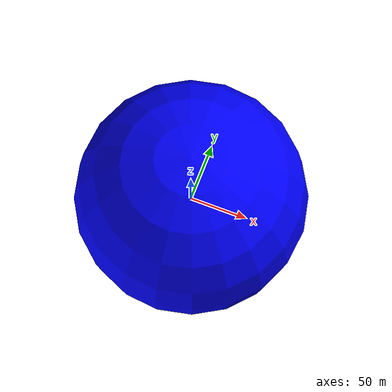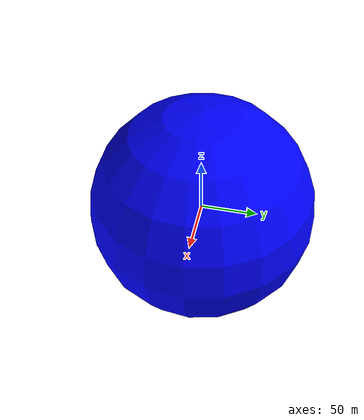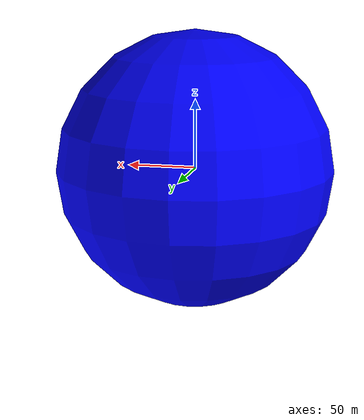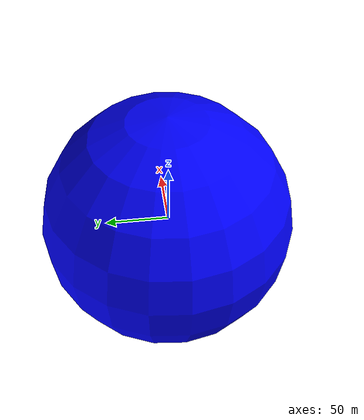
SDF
<?xml version="1.0" ?>
<sdf version="1.6">
  <world name="default">
    <physics name="1ms" type="ode">
      <max_step_size>0.001</max_step_size>
      <real_time_factor>1.0</real_time_factor>
    </physics>
    <plugin
      filename="libignition-gazebo-systems.so"
      name="ignition::gazebo::systems::v0::Physics">
    </plugin>
    <plugin
      filename="libignition-gazebo-systems.so"
      name="ignition::gazebo::systems::v0::Rendering">
    </plugin>

    <model name="box">
      <pose>1 2 3 0 0 1</pose>
      <link name="box_link">
        <pose>0.1 0.1 0.1 0 0 0</pose>
        <collision name="box_collision">
          <pose>0.11 0.11 0.11 0 0 0</pose>
          <geometry>
            <box>
              <size>3 4 5</size>
            </box>
          </geometry>
        </collision>

        <visual name="box_visual">
          <pose>0.12 0.12 0.12 0 0 0</pose>
          <geometry>
            <box>
              <size>1 2 3</size>
            </box>
          </geometry>
          <material>
            <ambient>1 0 0 1</ambient>
            <diffuse>1 0 0 1</diffuse>
            <specular>1 0 0 1</specular>
            <emissive>1 0 0 1</emissive>
          </material>
        </visual>
      </link>
    </model>

    <model name="cylinder">
      <pose>-1 -2 -3 0 0 1</pose>
      <link name="cylinder_link">
        <pose>0.2 0.2 0.2 0 0 0</pose>
        <collision name="cylinder_collision">
          <pose>0.21 0.21 0.21 0 0 0</pose>
          <geometry>
            <cylinder>
              <radius>0.2</radius>
              <length>0.1</length>
            </cylinder>
          </geometry>
        </collision>

        <visual name="cylinder_visual">
          <pose>0.22 0.22 0.22 0 0 0</pose>
          <geometry>
            <cylinder>
              <radius>2.1</radius>
              <length>10.2</length>
            </cylinder>
          </geometry>
          <material>
            <ambient>0 1 0 1</ambient>
            <diffuse>0 1 0 1</diffuse>
            <specular>0 1 0 1</specular>
            <emissive>0 1 0 1</emissive>
          </material>
        </visual>
      </link>
    </model>

    <model name="sphere">
      <pose>0 0 0 0 0 1</pose>
      <link name="sphere_link">
        <pose>0.3 0.3 0.3 0 0 0</pose>
        <collision name="sphere_collision">
          <pose>0.31 0.31 0.31 0 0 0</pose>
          <geometry>
            <sphere>
              <radius>23.4</radius>
            </sphere>
          </geometry>
        </collision>

        <visual name="sphere_visual">
          <pose>0.32 0.32 0.32 0 0 0</pose>
          <geometry>
            <sphere>
              <radius>100.2</radius>
            </sphere>
          </geometry>
          <material>
            <ambient>0 0 1 1</ambient>
            <diffuse>0 0 1 1</diffuse>
            <specular>0 0 1 1</specular>
            <emissive>0 0 1 1</emissive>
          </material>
        </visual>
      </link>
    </model>
  </world>
</sdf>
